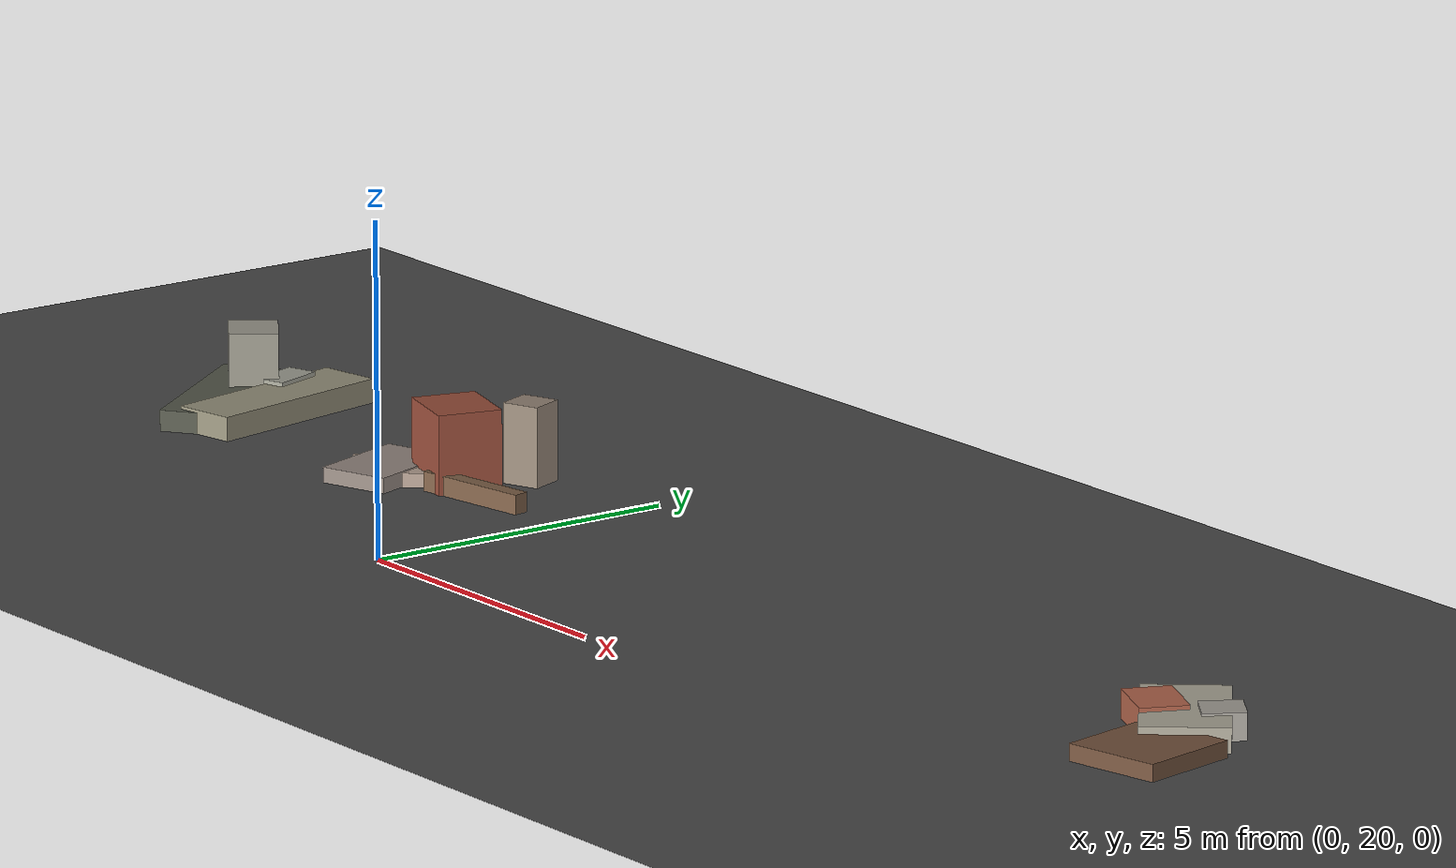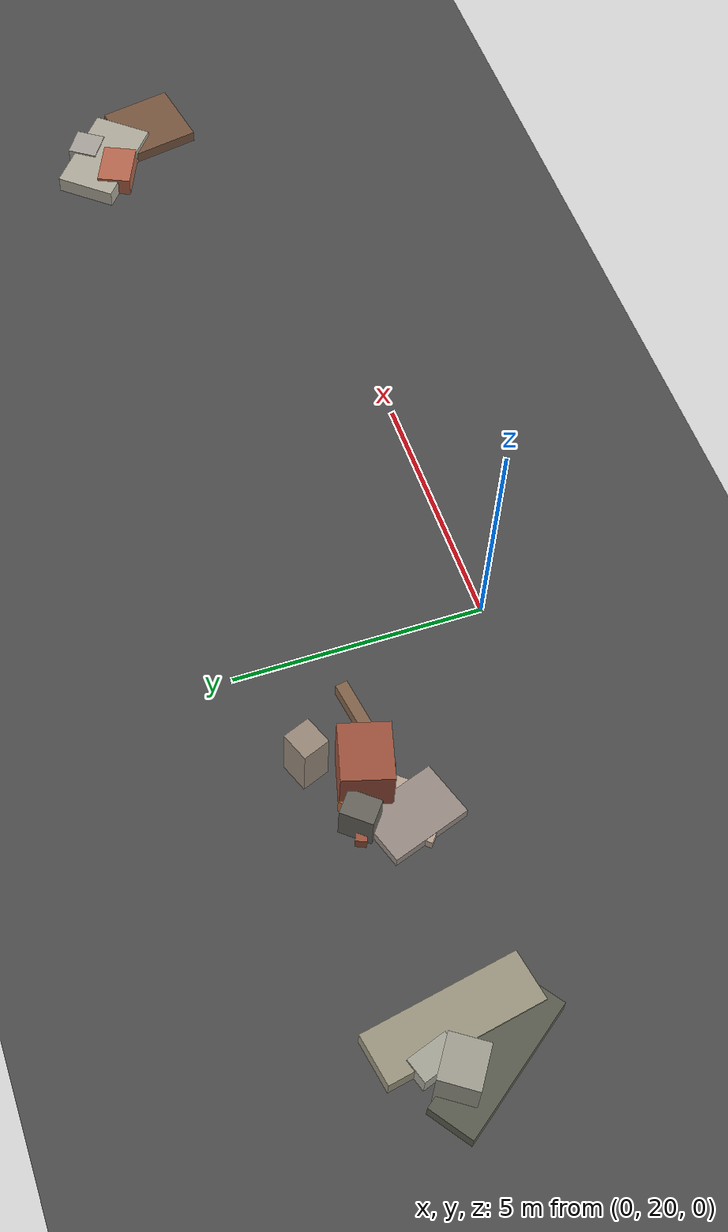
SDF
<sdf version="1.6">
 <world name="navitas_arena">
  <model name="ground_plane">
   <static>true</static>
   <link name="link">
    <collision name="collision">
     <geometry><plane><normal>0 0 1</normal><size>400 400</size></plane></geometry>
     <surface><friction><ode><mu>0.800</mu><mu2>0.800</mu2></ode></friction></surface>
    </collision>
    <visual name="visual">
     <cast_shadows>false</cast_shadows>
     <geometry><plane><normal>0 0 1</normal><size>400 400</size></plane></geometry>
     <material>
      <specular>0.04 0.04 0.04 1</specular>
      <script>
       <uri>file://media/materials/scripts/navitas_asphalt.material</uri>
       <name>Navitas/RealArenaAsphalt</name>
      </script>
     </material>
    </visual>
   </link>
  </model>
  <model name="deb_orta_17">
   <static>true</static>
   <pose>-2.835 23.216 0.000 0 0 0</pose>
   <link name="link">
    <collision name="col_0">
     <pose>-0.866 -0.452 0.118 0.000 0.000 1.894</pose>
     <geometry><box><size>1.625 1.103 0.236</size></box></geometry>
    </collision>
    <visual name="vis_0">
     <pose>-0.866 -0.452 0.118 0.000 0.000 1.894</pose>
     <geometry><box><size>1.625 1.103 0.236</size></box></geometry>
     <material>
      <ambient>0.55 0.51 0.48 1</ambient>
      <diffuse>0.60 0.55 0.52 1</diffuse>
      <specular>0.05 0.05 0.045 1</specular>
     </material>
    </visual>
    <collision name="col_1">
     <pose>-0.717 0.507 0.405 0.000 0.000 0.887</pose>
     <geometry><box><size>0.649 0.507 0.810</size></box></geometry>
    </collision>
    <visual name="vis_1">
     <pose>-0.717 0.507 0.405 0.000 0.000 0.887</pose>
     <geometry><box><size>0.649 0.507 0.810</size></box></geometry>
     <material>
      <ambient>0.37 0.36 0.34 1</ambient>
      <diffuse>0.40 0.39 0.36 1</diffuse>
      <specular>0.05 0.05 0.045 1</specular>
     </material>
    </visual>
    <collision name="col_2">
     <pose>-0.942 0.548 0.122 0.000 0.000 2.724</pose>
     <geometry><box><size>0.371 0.217 0.244</size></box></geometry>
    </collision>
    <visual name="vis_2">
     <pose>-0.942 0.548 0.122 0.000 0.000 2.724</pose>
     <geometry><box><size>0.371 0.217 0.244</size></box></geometry>
     <material>
      <ambient>0.57 0.30 0.22 1</ambient>
      <diffuse>0.61 0.33 0.24 1</diffuse>
      <specular>0.05 0.05 0.045 1</specular>
     </material>
    </visual>
    <collision name="col_3">
     <pose>1.052 -0.219 0.149 0.000 0.000 3.297</pose>
     <geometry><box><size>1.905 0.242 0.299</size></box></geometry>
    </collision>
    <visual name="vis_3">
     <pose>1.052 -0.219 0.149 0.000 0.000 3.297</pose>
     <geometry><box><size>1.905 0.242 0.299</size></box></geometry>
     <material>
      <ambient>0.47 0.36 0.26 1</ambient>
      <diffuse>0.51 0.39 0.29 1</diffuse>
      <specular>0.05 0.05 0.045 1</specular>
     </material>
    </visual>
    <collision name="col_4">
     <pose>0.651 1.071 0.612 0.000 0.000 1.940</pose>
     <geometry><box><size>0.560 0.584 1.224</size></box></geometry>
    </collision>
    <visual name="vis_4">
     <pose>0.651 1.071 0.612 0.000 0.000 1.940</pose>
     <geometry><box><size>0.560 0.584 1.224</size></box></geometry>
     <material>
      <ambient>0.55 0.50 0.45 1</ambient>
      <diffuse>0.60 0.54 0.48 1</diffuse>
      <specular>0.05 0.05 0.045 1</specular>
     </material>
    </visual>
   </link>
  </model>
  <model name="deb_orta_34">
   <static>true</static>
   <pose>-8.051 23.399 0.000 0 0 0</pose>
   <link name="link">
    <collision name="col_0">
     <pose>-0.245 -0.427 0.163 0.000 0.000 2.199</pose>
     <geometry><box><size>2.856 0.905 0.326</size></box></geometry>
    </collision>
    <visual name="vis_0">
     <pose>-0.245 -0.427 0.163 0.000 0.000 2.199</pose>
     <geometry><box><size>2.856 0.905 0.326</size></box></geometry>
     <material>
      <ambient>0.33 0.33 0.29 1</ambient>
      <diffuse>0.35 0.36 0.31 1</diffuse>
      <specular>0.05 0.05 0.045 1</specular>
     </material>
    </visual>
    <collision name="col_1">
     <pose>-0.407 0.291 0.573 0.000 0.000 2.549</pose>
     <geometry><box><size>0.845 0.752 1.146</size></box></geometry>
    </collision>
    <visual name="vis_1">
     <pose>-0.407 0.291 0.573 0.000 0.000 2.549</pose>
     <geometry><box><size>0.845 0.752 1.146</size></box></geometry>
     <material>
      <ambient>0.59 0.58 0.53 1</ambient>
      <diffuse>0.63 0.62 0.57 1</diffuse>
      <specular>0.05 0.05 0.045 1</specular>
     </material>
    </visual>
    <collision name="col_2">
     <pose>0.006 0.595 0.219 0.000 0.000 1.886</pose>
     <geometry><box><size>0.813 0.488 0.438</size></box></geometry>
    </collision>
    <visual name="vis_2">
     <pose>0.006 0.595 0.219 0.000 0.000 1.886</pose>
     <geometry><box><size>0.813 0.488 0.438</size></box></geometry>
     <material>
      <ambient>0.60 0.60 0.55 1</ambient>
      <diffuse>0.65 0.65 0.60 1</diffuse>
      <specular>0.05 0.05 0.045 1</specular>
     </material>
    </visual>
    <collision name="col_3">
     <pose>0.569 0.047 0.187 0.000 0.000 1.753</pose>
     <geometry><box><size>3.102 0.980 0.374</size></box></geometry>
    </collision>
    <visual name="vis_3">
     <pose>0.569 0.047 0.187 0.000 0.000 1.753</pose>
     <geometry><box><size>3.102 0.980 0.374</size></box></geometry>
     <material>
      <ambient>0.56 0.55 0.46 1</ambient>
      <diffuse>0.61 0.59 0.50 1</diffuse>
      <specular>0.05 0.05 0.045 1</specular>
     </material>
    </visual>
   </link>
  </model>
  <model name="deb_orta_193">
   <static>true</static>
   <pose>14.131 23.337 0.000 0 0 0</pose>
   <link name="link">
    <collision name="col_0">
     <pose>-0.084 0.763 0.200 0.000 0.000 2.549</pose>
     <geometry><box><size>0.632 0.627 0.400</size></box></geometry>
    </collision>
    <visual name="vis_0">
     <pose>-0.084 0.763 0.200 0.000 0.000 2.549</pose>
     <geometry><box><size>0.632 0.627 0.400</size></box></geometry>
     <material>
      <ambient>0.61 0.60 0.57 1</ambient>
      <diffuse>0.66 0.64 0.61 1</diffuse>
      <specular>0.05 0.05 0.045 1</specular>
     </material>
    </visual>
    <collision name="col_1">
     <pose>-0.518 0.470 0.181 0.000 0.000 2.450</pose>
     <geometry><box><size>2.069 1.272 0.362</size></box></geometry>
    </collision>
    <visual name="vis_1">
     <pose>-0.518 0.470 0.181 0.000 0.000 2.450</pose>
     <geometry><box><size>2.069 1.272 0.362</size></box></geometry>
     <material>
      <ambient>0.64 0.62 0.57 1</ambient>
      <diffuse>0.69 0.67 0.61 1</diffuse>
      <specular>0.05 0.05 0.045 1</specular>
     </material>
    </visual>
    <collision name="col_2">
     <pose>-0.931 0.283 0.212 0.000 0.000 2.717</pose>
     <geometry><box><size>0.983 0.722 0.423</size></box></geometry>
    </collision>
    <visual name="vis_2">
     <pose>-0.931 0.283 0.212 0.000 0.000 2.717</pose>
     <geometry><box><size>0.983 0.722 0.423</size></box></geometry>
     <material>
      <ambient>0.66 0.38 0.29 1</ambient>
      <diffuse>0.72 0.41 0.31 1</diffuse>
      <specular>0.05 0.05 0.045 1</specular>
     </material>
    </visual>
    <collision name="col_3">
     <pose>0.234 -0.782 0.125 0.000 0.000 1.756</pose>
     <geometry><box><size>1.557 1.475 0.251</size></box></geometry>
    </collision>
    <visual name="vis_3">
     <pose>0.234 -0.782 0.125 0.000 0.000 1.756</pose>
     <geometry><box><size>1.557 1.475 0.251</size></box></geometry>
     <material>
      <ambient>0.43 0.32 0.23 1</ambient>
      <diffuse>0.47 0.34 0.25 1</diffuse>
      <specular>0.05 0.05 0.045 1</specular>
     </material>
    </visual>
   </link>
  </model>
  <model name="deb_orta_298">
   <static>true</static>
   <pose>-3.325 23.410 0.000 0 0 0</pose>
   <link name="link">
    <collision name="col_0">
     <pose>-0.003 0.078 0.070 0.000 0.000 2.240</pose>
     <geometry><box><size>0.206 0.220 0.141</size></box></geometry>
    </collision>
    <visual name="vis_0">
     <pose>-0.003 0.078 0.070 0.000 0.000 2.240</pose>
     <geometry><box><size>0.206 0.220 0.141</size></box></geometry>
     <material>
      <ambient>0.53 0.50 0.48 1</ambient>
      <diffuse>0.57 0.54 0.52 1</diffuse>
      <specular>0.05 0.05 0.045 1</specular>
     </material>
    </visual>
    <collision name="col_1">
     <pose>0.195 0.068 0.206 0.000 0.000 2.055</pose>
     <geometry><box><size>0.942 0.460 0.412</size></box></geometry>
    </collision>
    <visual name="vis_1">
     <pose>0.195 0.068 0.206 0.000 0.000 2.055</pose>
     <geometry><box><size>0.942 0.460 0.412</size></box></geometry>
     <material>
      <ambient>0.61 0.38 0.23 1</ambient>
      <diffuse>0.66 0.41 0.25 1</diffuse>
      <specular>0.05 0.05 0.045 1</specular>
     </material>
    </visual>
    <collision name="col_2">
     <pose>0.484 0.267 0.122 0.000 0.000 3.190</pose>
     <geometry><box><size>0.410 0.184 0.243</size></box></geometry>
    </collision>
    <visual name="vis_2">
     <pose>0.484 0.267 0.122 0.000 0.000 3.190</pose>
     <geometry><box><size>0.410 0.184 0.243</size></box></geometry>
     <material>
      <ambient>0.64 0.39 0.29 1</ambient>
      <diffuse>0.70 0.42 0.31 1</diffuse>
      <specular>0.05 0.05 0.045 1</specular>
     </material>
    </visual>
    <collision name="col_3">
     <pose>0.636 -0.113 0.102 0.000 0.000 2.084</pose>
     <geometry><box><size>0.360 0.477 0.203</size></box></geometry>
    </collision>
    <visual name="vis_3">
     <pose>0.636 -0.113 0.102 0.000 0.000 2.084</pose>
     <geometry><box><size>0.360 0.477 0.203</size></box></geometry>
     <material>
      <ambient>0.40 0.28 0.21 1</ambient>
      <diffuse>0.43 0.30 0.23 1</diffuse>
      <specular>0.05 0.05 0.045 1</specular>
     </material>
    </visual>
    <collision name="col_4">
     <pose>0.319 0.195 0.061 0.000 0.000 2.117</pose>
     <geometry><box><size>0.191 0.175 0.121</size></box></geometry>
    </collision>
    <visual name="vis_4">
     <pose>0.319 0.195 0.061 0.000 0.000 2.117</pose>
     <geometry><box><size>0.191 0.175 0.121</size></box></geometry>
     <material>
      <ambient>0.58 0.58 0.51 1</ambient>
      <diffuse>0.62 0.63 0.55 1</diffuse>
      <specular>0.05 0.05 0.045 1</specular>
     </material>
    </visual>
    <collision name="col_5">
     <pose>0.584 -0.052 0.608 0.000 0.000 2.871</pose>
     <geometry><box><size>1.143 0.988 1.217</size></box></geometry>
    </collision>
    <visual name="vis_5">
     <pose>0.584 -0.052 0.608 0.000 0.000 2.871</pose>
     <geometry><box><size>1.143 0.988 1.217</size></box></geometry>
     <material>
      <ambient>0.57 0.30 0.22 1</ambient>
      <diffuse>0.62 0.32 0.24 1</diffuse>
      <specular>0.05 0.05 0.045 1</specular>
     </material>
    </visual>
    <collision name="col_6">
     <pose>-0.123 -0.482 0.107 0.000 0.000 0.868</pose>
     <geometry><box><size>1.623 1.017 0.215</size></box></geometry>
    </collision>
    <visual name="vis_6">
     <pose>-0.123 -0.482 0.107 0.000 0.000 0.868</pose>
     <geometry><box><size>1.623 1.017 0.215</size></box></geometry>
     <material>
      <ambient>0.68 0.60 0.55 1</ambient>
      <diffuse>0.73 0.65 0.59 1</diffuse>
      <specular>0.05 0.05 0.045 1</specular>
     </material>
    </visual>
   </link>
  </model>
 </world>
</sdf>
